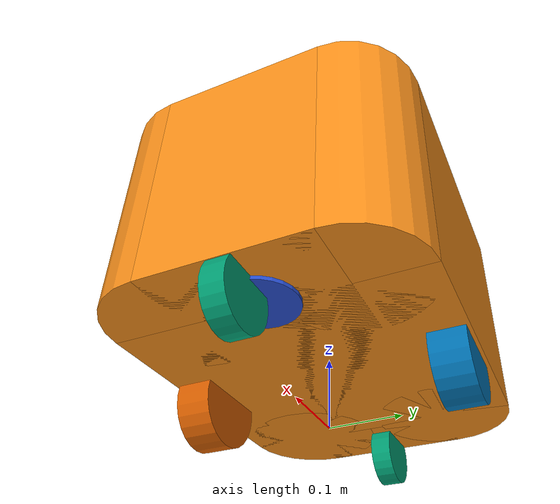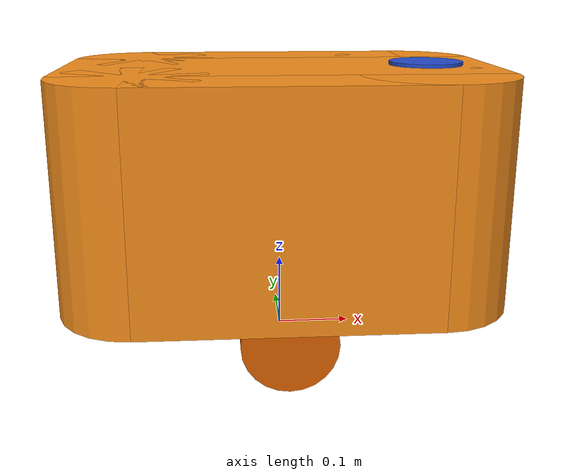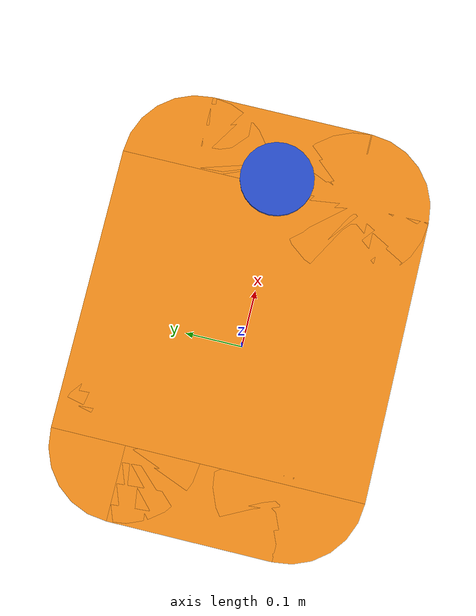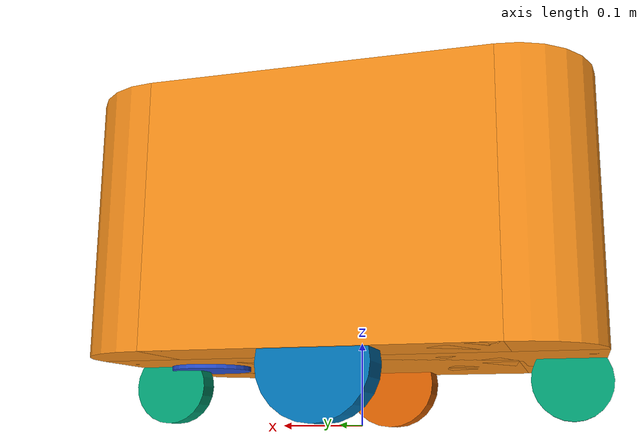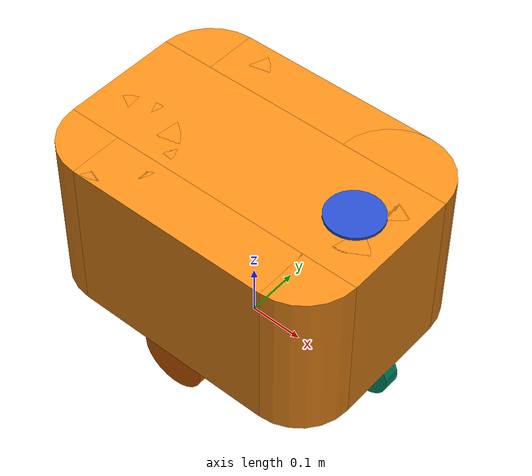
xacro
<?xml version="1.0"?>
<!-- Revolute-Revolute Manipulator -->
<robot name="trp1" xmlns:xacro="http://www.ros.org/wiki/xacro">
  <!-- Constants for robot dimensions -->
  <xacro:property name="PI" value="3.1415926535897931"/>

  <!-- Import Rviz colors -->
  <xacro:include filename="$(find trp1_description)/urdf/materials.xacro" />
  <xacro:include filename="$(find trp1_description)/urdf/d430.urdf.xacro"/>

  <!-- Base Link -->
  <link name="base_link">
    <collision>
      <origin xyz="0 0 0.115" rpy="0 0 0"/>
      <geometry>
        <box size=".6 .5 .01"/>
      </geometry>
    </collision>

    <visual>
      <origin xyz="0 0 0.225" rpy="0 0 0"/>
      <geometry>
        <box size=".58 .22 .3"/>
      </geometry>
      <material name="orange"/>
    </visual>

    <visual>
      <origin xyz="0 0 0.225" rpy="0 0 0"/>
      <geometry>
        <box size=".38 .42 .3"/>
      </geometry>
      <material name="orange"/>
    </visual>

    <visual>
      <origin xyz=".19 .11 0.225" rpy="0 0 0"/>
      <geometry>
        <cylinder length="0.3" radius="0.1"/>
      </geometry>
      <material name="orange"/>
    </visual>

    <visual>
      <origin xyz="-0.19 -0.11 0.225" rpy="0 0 0"/>
      <geometry>
        <cylinder length="0.3" radius="0.1"/>
      </geometry>
      <material name="orange"/>
    </visual>

    <visual>
      <origin xyz="0.19 -0.11 0.225" rpy="0 0 0"/>
      <geometry>
        <cylinder length="0.3" radius="0.1"/>
      </geometry>
      <material name="orange"/>
    </visual>

    <visual>
      <origin xyz="-0.19 0.11 0.225" rpy="0 0 0"/>
      <geometry>
        <cylinder length="0.3" radius="0.1"/>
      </geometry>
      <material name="orange"/>
    </visual>

    <visual>
      <origin xyz="0.20 0 0.225" rpy="0 0 0"/>
      <geometry>
        <cylinder length="0.31" radius="0.05"/>
      </geometry>
      <material name="blue"/>
    </visual>

    <collision name="collision_f">
      <origin xyz="-0.250 0.0 0.05" rpy="0 1.5707 1.5707"/>
      <geometry>
        <cylinder length="0.03" radius="0.04625"/>
      </geometry>
    </collision>

    <visual name="visual_front_wheel_stub">
      <origin xyz="-0.250 0.0 0.05" rpy="0 1.5707 1.5707"/>
      <geometry>
        <cylinder length="0.03" radius="0.04625"/>
      </geometry>
    </visual>

    <collision name="collision_b">
      <origin xyz="0.250 0.0 0.05" rpy="0 1.5707 1.5707"/>
      <geometry>
        <cylinder length="0.03" radius="0.04625"/>
      </geometry>
    </collision>

    <visual name="visual_back_wheel_stub">
      <origin xyz="0.250 0.0 0.05" rpy="0 1.5707 1.5707"/>
      <geometry>
        <cylinder length="0.03" radius="0.04625"/>
      </geometry>
    </visual>

  </link>

  <link name="imu_link"/>

  <joint type="fixed" name="imu_joint">
    <origin xyz="0 0 0.18" rpy="0 0 0"/>
    <parent link="base_link"/>
    <child link="imu_link"/>
  </joint>

  <!-- Intel D430 -->
  <joint type="fixed" name="camera_joint">
    <origin xyz="0.34 0.0 0.08" rpy="0 -0.13 0"/>
    <child link="camera_mount_link">camera_mount_link</child>
    <parent link="base_link">base_link</parent>
    <axis xyz="0 1 0"/>
  </joint>
  <!-- Intel D430 End -->

  <link name="left_wheel">
    <collision name="collision">
      <origin xyz="0 0.0 0" rpy="0 1.5707 1.5707"/>
      <geometry>
        <cylinder length="0.05" radius="0.0605"/>
      </geometry>
    </collision>

    <visual name="visual">
      <origin xyz="0 0.0 0" rpy="0 1.5707 1.5707"/>
      <geometry>
        <cylinder length="0.05" radius="0.0605"/>
      </geometry>
    </visual>

    <inertial>
      <mass value="1" />
      <origin xyz="0 0.0 0"/>
      <inertia ixx="0.1" ixy="0" ixz="0" iyy="0.1" iyz="0" izz="0.1" />
    </inertial>
  </link>

  <joint type="fixed" name="left_wheel_hinge">
    <origin xyz="0 0.18 0.0605" rpy="0 0 0"/>
    <child link="left_wheel">left_wheel</child>
    <parent link="base_link">base_link</parent>
  </joint>

  <link name="right_wheel">
    <collision name="collision">
      <origin xyz="0 0.0 0" rpy="0 1.5707 1.5707"/>
      <geometry>
        <cylinder length="0.05" radius="0.0605"/>
      </geometry>
    </collision>

    <visual name="visual">
      <origin xyz="0 0.0 0" rpy="0 1.5707 1.5707"/>
      <geometry>
        <cylinder length="0.05" radius="0.0605"/>
      </geometry>
    </visual>

    <inertial>
      <mass value="1" />
      <origin xyz="0 0.0 0"/>
      <inertia ixx="0.1" ixy="0" ixz="0" iyy="0.1" iyz="0" izz="0.1" />
    </inertial>
  </link>

  <joint type="fixed" name="right_wheel_hinge">
    <origin xyz="0 -0.18 0.0605" rpy="0 0 0"/>
    <child link="right_wheel">right_wheel</child>
    <parent link="base_link">base_link</parent>
  </joint>

  <transmission name="tran1">
    <type>transmission_interface/SimpleTransmission</type>
    <joint name="left_wheel_hinge">
      <hardwareInterface>VelocityJointInterface</hardwareInterface>
    </joint>
    <actuator name="left_motor">
      <hardwareInterface>VelocityJointInterface</hardwareInterface>
      <mechanicalReduction>1</mechanicalReduction>
    </actuator>
  </transmission>

  <transmission name="tran2">
    <type>transmission_interface/SimpleTransmission</type>
    <joint name="right_wheel_hinge">
      <hardwareInterface>VelocityJointInterface</hardwareInterface>
    </joint>
    <actuator name="right_motor">
      <hardwareInterface>VelocityJointInterface</hardwareInterface>
      <mechanicalReduction>1</mechanicalReduction>
    </actuator>
  </transmission>
</robot>

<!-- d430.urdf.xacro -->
<!--
This is the URDF model for the Intel RealSense d430 camera module by Mak601
-->

<robot name="sensor_d430" xmlns:xacro="http://ros.org/wiki/xacro">
  <!-- Includes -->
   <xacro:property name="M_PI" value="3.1415926535897931" />

<link name="camera_mount_link">

</link>

  <joint type="fixed" name="camera_mount_joint">
    <origin xyz="0.016 0.0 0.009" rpy="0 0 3.14"/>
    <parent link="camera_mount_link">camera_mount_link</parent>
    <child link="camera_optical_depth_link">camera_optical_depth_link</child>
    <axis xyz="0 1 0"/>
  </joint>

    <link name="camera_optical_depth_link">
   </link>

</robot>
